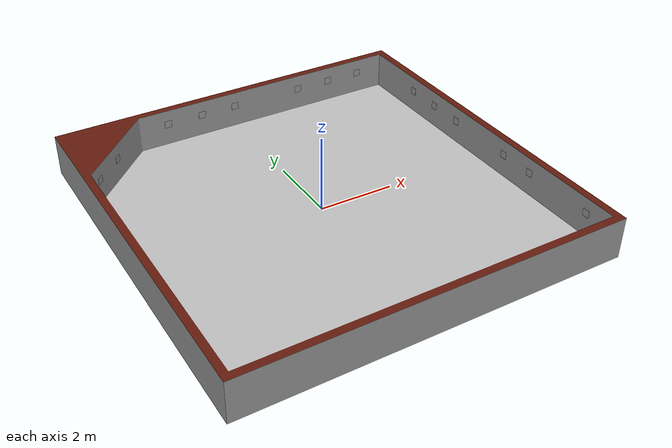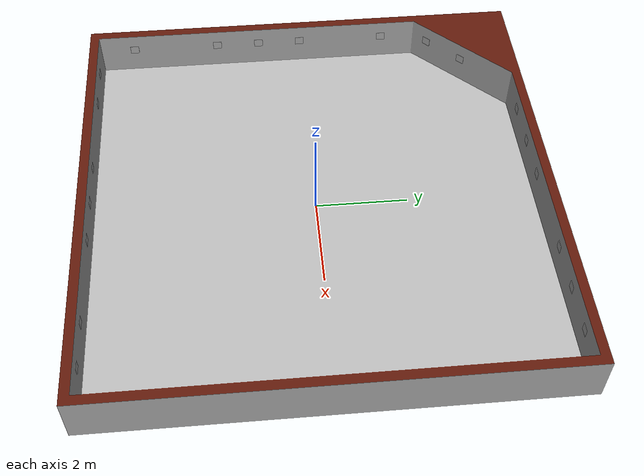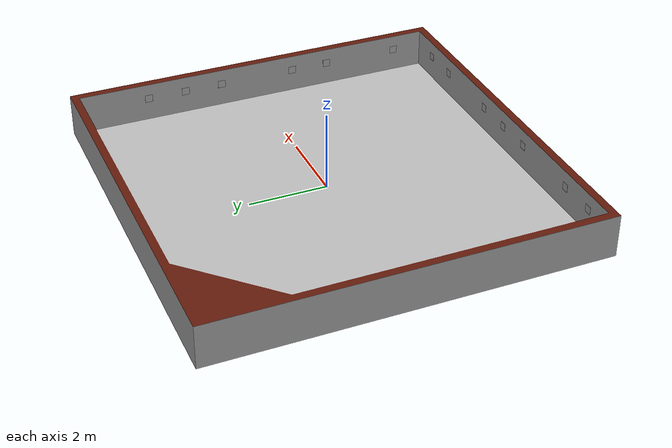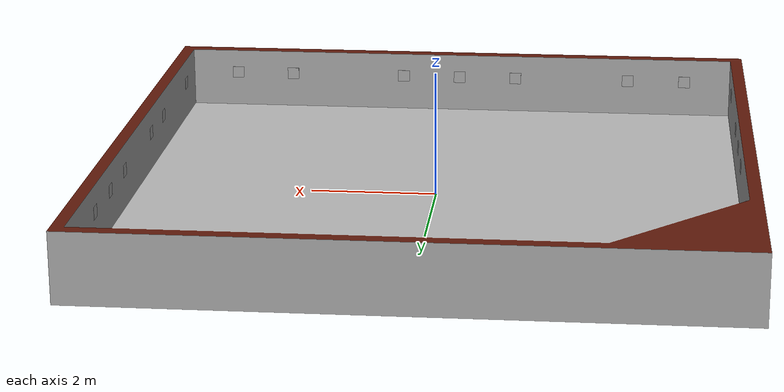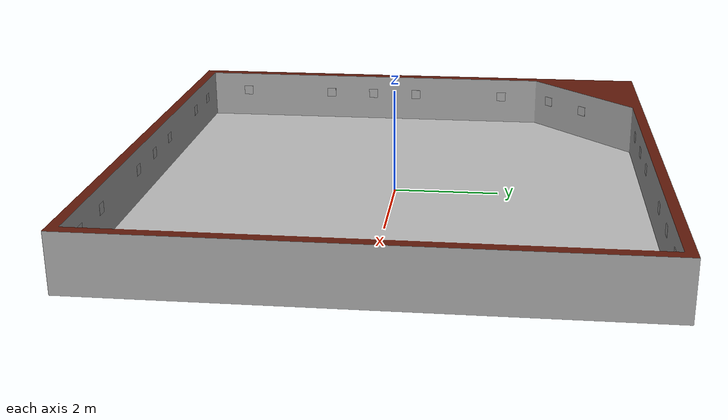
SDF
<sdf version="1.7">
 <world name="default">
  <light name="sun" type="directional">
   <pose>0 0 10 0 -0 0</pose>
   <diffuse>0.8 0.8 0.8 1</diffuse>
   <specular>0.2 0.2 0.2 1</specular>
   <attenuation>
    <range>1000</range>
    <constant>0.9</constant>
    <linear>0.01</linear>
    <quadratic>0.001</quadratic>
   </attenuation>
   <direction>-0.5 0.1 -0.9</direction>
   <spot><inner_angle>0</inner_angle><outer_angle>0</outer_angle><falloff>0</falloff></spot>
  </light>
  <include><uri>model://beluga_demo_gazebo/models/playground</uri></include>
  <gravity>0 0 -9.8</gravity>
  <magnetic_field>6e-06 2.3e-05 -4.2e-05</magnetic_field>
  <atmosphere type="adiabatic"/>
  <physics type="ode">
   <max_step_size>0.001</max_step_size>
   <real_time_factor>1</real_time_factor>
   <real_time_update_rate>1000</real_time_update_rate>
  </physics>
  <scene>
   <ambient>0.4 0.4 0.4 1</ambient>
   <background>0.2 0.2 0.2 1</background>
   <shadows>1</shadows>
   <grid>0</grid>
  </scene>
  <audio><device>default</device></audio>
  <spherical_coordinates>
   <surface_model>EARTH_WGS84</surface_model>
   <latitude_deg>0</latitude_deg>
   <longitude_deg>0</longitude_deg>
   <elevation>0</elevation>
   <heading_deg>0</heading_deg>
  </spherical_coordinates>
  <include>
   <uri>model://Apriltag36_11_00001</uri>
   <name>apriltag36_11_00001_1</name>
   <pose>4.8 1 0.6 1.57 -0 1.57</pose>
  </include>
  <include>
   <uri>model://Apriltag36_11_00002</uri>
   <name>apriltag36_11_00002_2</name>
   <pose>4.8 2 0.6 1.57 -0 1.57</pose>
  </include>
  <include>
   <uri>model://Apriltag36_11_00003</uri>
   <name>apriltag36_11_00003_3</name>
   <pose>4.8 3 0.6 1.57 -0 1.57</pose>
  </include>
  <include>
   <uri>model://Apriltag36_11_00001</uri>
   <name>apriltag36_11_00000_5</name>
   <pose>4 4.8 0.6 1.57 -0 0</pose>
  </include>
  <include>
   <uri>model://Apriltag36_11_00002</uri>
   <name>apriltag36_11_00001_6</name>
   <pose>3 4.8 0.6 1.57 -0 0</pose>
  </include>
  <include>
   <uri>model://Apriltag36_11_00003</uri>
   <name>apriltag36_11_00002_7</name>
   <pose>2 4.8 0.6 1.57 -0 0</pose>
  </include>
  <include>
   <uri>model://Apriltag36_11_00001</uri>
   <name>apriltag36_11_00000_9</name>
   <pose>0 4.8 0.6 1.57 -0 0</pose>
  </include>
  <include>
   <uri>model://Apriltag36_11_00002</uri>
   <name>apriltag36_11_00001_10</name>
   <pose>-1 4.8 0.6 1.57 -0 0</pose>
  </include>
  <include>
   <uri>model://Apriltag36_11_00003</uri>
   <name>apriltag36_11_00002_11</name>
   <pose>-2 4.8 0.6 1.57 -0 0</pose>
  </include>
  <include>
   <uri>model://Apriltag36_11_00001</uri>
   <name>apriltag36_11_00000_13</name>
   <pose>-3.8 3.8 0.6 1.57 -0 0.785</pose>
  </include>
  <include>
   <uri>model://Apriltag36_11_00002</uri>
   <name>apriltag36_11_00001_14</name>
   <pose>-4.507 3.09289 0.6 1.57 -0 0.785</pose>
  </include>
  <include>
   <uri>model://Apriltag36_11_00003</uri>
   <name>apriltag36_11_00002_15</name>
   <pose>-4.8 2 0.6 1.57 -0 1.57</pose>
  </include>
  <include>
   <uri>model://Apriltag36_11_00001</uri>
   <name>apriltag36_11_00000_17</name>
   <pose>-4.8 0 0.6 1.57 -0 1.57</pose>
  </include>
  <include>
   <uri>model://Apriltag36_11_00002</uri>
   <name>apriltag36_11_00001_18</name>
   <pose>-4.8 -1 0.6 1.57 -0 1.57</pose>
  </include>
  <include>
   <uri>model://Apriltag36_11_00003</uri>
   <name>apriltag36_11_00002_19</name>
   <pose>-4.8 -2 0.6 1.57 -0 1.57</pose>
  </include>
  <include>
   <uri>model://Apriltag36_11_00001</uri>
   <name>apriltag36_11_00000_21</name>
   <pose>-4.8 -4 0.6 1.57 -0 1.57</pose>
  </include>
  <include>
   <uri>model://Apriltag36_11_00002</uri>
   <name>apriltag36_11_00000_22</name>
   <pose>-4 -4.8 0.6 1.57 -0 0</pose>
  </include>
  <include>
   <uri>model://Apriltag36_11_00003</uri>
   <name>apriltag36_11_00001_23</name>
   <pose>-3 -4.8 0.6 1.57 -0 -0</pose>
  </include>
  <include>
   <uri>model://Apriltag36_11_00001</uri>
   <name>apriltag36_11_00003_25</name>
   <pose>-1 -4.8 0.6 1.57 -0 0</pose>
  </include>
  <include>
   <uri>model://Apriltag36_11_00002</uri>
   <name>apriltag36_11_00000_26</name>
   <pose>0 -4.8 0.6 1.57 -0 0</pose>
  </include>
  <include>
   <uri>model://Apriltag36_11_00003</uri>
   <name>apriltag36_11_00001_27</name>
   <pose>1 -4.8 0.6 1.57 -0 0</pose>
  </include>
  <include>
   <uri>model://Apriltag36_11_00001</uri>
   <name>apriltag36_11_00003_29</name>
   <pose>3 -4.8 0.6 1.57 -0 0</pose>
  </include>
  <include>
   <uri>model://Apriltag36_11_00002</uri>
   <name>apriltag36_11_00000_30</name>
   <pose>4 -4.8 0.6 1.57 -0 0</pose>
  </include>
  <include>
   <uri>model://Apriltag36_11_00003</uri>
   <name>apriltag36_11_00000_31</name>
   <pose>4.8 -4 0.6 1.57 -0 1.57</pose>
  </include>
  <include>
   <uri>model://Apriltag36_11_00001</uri>
   <name>apriltag36_11_00002_33</name>
   <pose>4.8 -2 0.6 1.57 -0 1.57</pose>
  </include>
  <include>
   <uri>model://Apriltag36_11_00002</uri>
   <name>apriltag36_11_00003_34</name>
   <pose>4.8 -1 0.6 1.57 -0 1.57</pose>
  </include>
 </world>
</sdf>

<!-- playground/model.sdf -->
<sdf version='1.7'>
  <model name='playground'>
    <link name='link'>
      <collision name='collision'>
        <max_contacts>10</max_contacts>
        <geometry>
          <mesh>
            <uri>meshes/playground.dae</uri>
            <scale>1 1 1</scale>
          </mesh>
        </geometry>
        <surface>
          <contact>
            <ode/>
          </contact>
          <bounce/>
          <friction>
            <torsional>
              <ode/>
            </torsional>
            <ode/>
          </friction>
        </surface>
      </collision>
      <visual name='visual'>
        <geometry>
          <mesh>
            <uri>meshes/playground.dae</uri>
            <scale>1 1 1</scale>
          </mesh>
        </geometry>
      </visual>
      <self_collide>0</self_collide>
      <enable_wind>0</enable_wind>
      <kinematic>0</kinematic>
    </link>
    <static>1</static>
  </model>
</sdf>

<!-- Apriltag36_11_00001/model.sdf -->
<sdf version='1.6'>
  <model name='Apriltag36_11_00001'>
    <link name='main'>
    <pose frame=''>0 0 0 0 0 0</pose>
      <visual name='main_Visual'>
        <geometry>
          <box>
          <size>0.2 0.2 0.01</size>
          </box>
        </geometry>
           <material>
          <script>
            <uri>model://Apriltag36_11_00001/materials/scripts</uri>
            <uri>model://Apriltag36_11_00001/materials/textures</uri>
            <name>Apriltag36_11_00001</name>
          </script>
        </material>
      </visual>
     </link>
    <static>1</static>
  </model>
</sdf>

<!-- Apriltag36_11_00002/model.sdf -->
<sdf version='1.6'>
  <model name='Apriltag36_11_00002'>
    <link name='main'>
    <pose frame=''>0 0 0 0 0 0</pose>
      <visual name='main_Visual'>
        <geometry>
          <box>
          <size>0.2 0.2 0.01</size>
          </box>
        </geometry>
           <material>
          <script>
            <uri>model://Apriltag36_11_00002/materials/scripts</uri>
            <uri>model://Apriltag36_11_00002/materials/textures</uri>
            <name>Apriltag36_11_00002</name>
          </script>
        </material>
      </visual>
     </link>
    <static>1</static>
  </model>
</sdf>

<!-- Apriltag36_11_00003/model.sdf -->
<sdf version='1.6'>
  <model name='Apriltag36_11_00003'>
    <link name='main'>
    <pose frame=''>0 0 0 0 0 0</pose>
      <visual name='main_Visual'>
        <geometry>
          <box>
          <size>0.2 0.2 0.01</size>
          </box>
        </geometry>
           <material>
          <script>
            <uri>model://Apriltag36_11_00003/materials/scripts</uri>
            <uri>model://Apriltag36_11_00003/materials/textures</uri>
            <name>Apriltag36_11_00003</name>
          </script>
        </material>
      </visual>
     </link>
    <static>1</static>
  </model>
</sdf>
